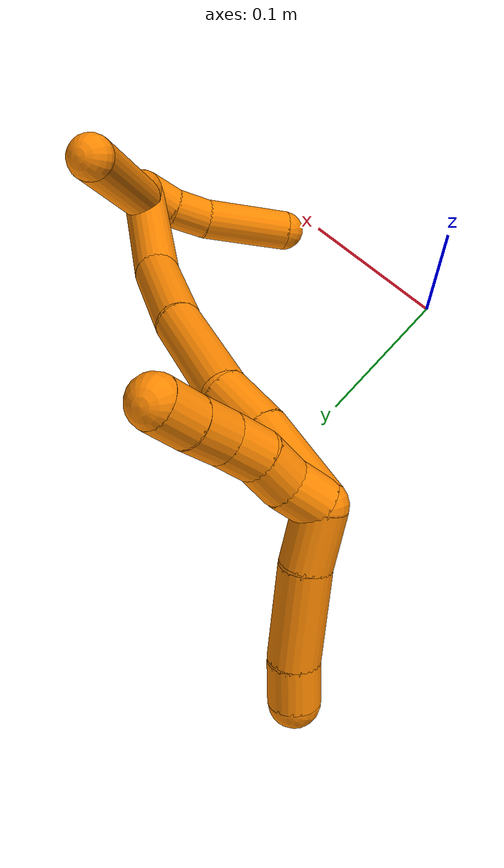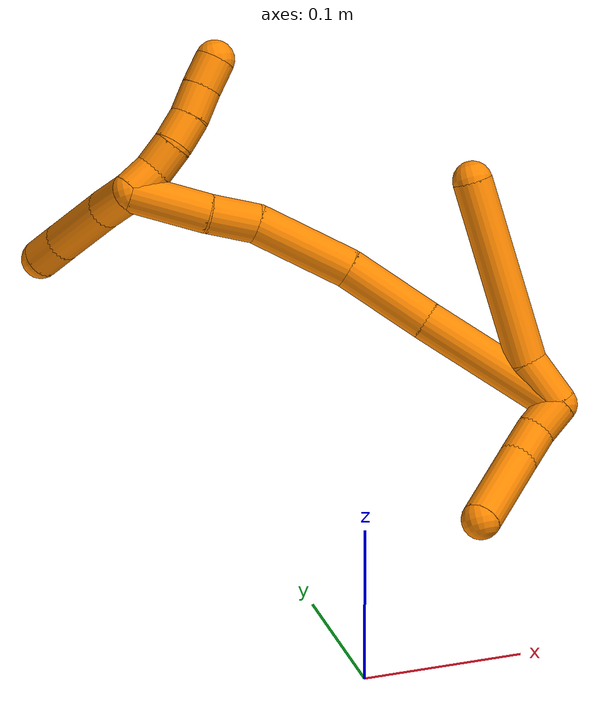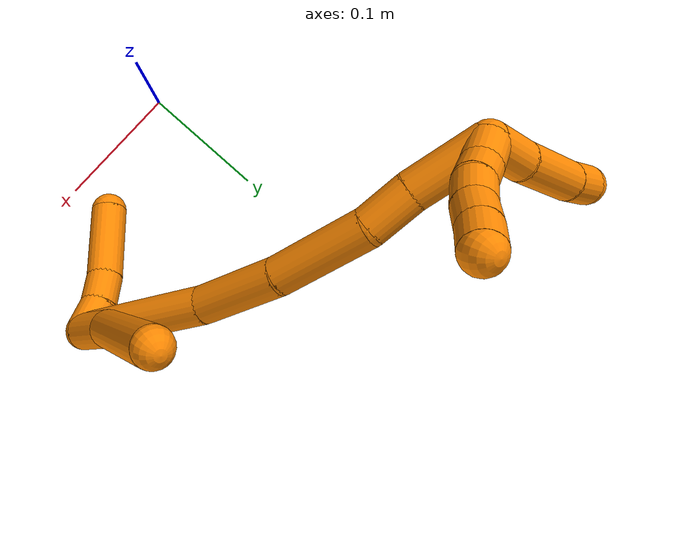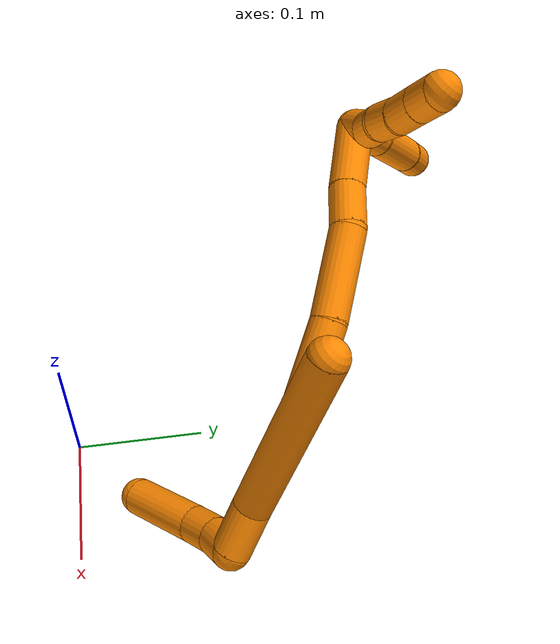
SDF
<sdf version="1.7">
 <world name="default">
  <model name="19">
   <static>0</static>
   <link name="19">
    <collision name="collision-cylinder-e_1_2_8">
     <pose>-0.006831 0.00134 0.014496 -0.092158 -0.438727 0.020561</pose>
     <geometry><cylinder><radius>0.0125</radius><length>0.032162</length></cylinder></geometry>
     <surface>
      <friction><ode><mu>1.16</mu><mu2>1.16</mu2><slip1>0</slip1><slip2>0</slip2></ode></friction>
      <contact><ode><kp>1e+06</kp><kd>1</kd><max_vel>0</max_vel><min_depth>0.001</min_depth></ode></contact>
     </surface>
    </collision>
    <visual name="visual-cylinder-e_1_2_8">
     <pose>-0.006831 0.00134 0.014496 -0.092158 -0.438727 0.020561</pose>
     <geometry><cylinder><radius>0.0125</radius><length>0.032162</length></cylinder></geometry>
     <material><ambient>0.996078 0.537255 0 1</ambient></material>
    </visual>
    <collision name="collision-cylinder-e_2_8_6">
     <pose>-0.027493 -0.00879 0.085105 0.201626 -0.23696 -0.024082</pose>
     <geometry><cylinder><radius>0.0125</radius><length>0.117838</length></cylinder></geometry>
     <surface>
      <friction><ode><mu>1.16</mu><mu2>1.16</mu2><slip1>0</slip1><slip2>0</slip2></ode></friction>
      <contact><ode><kp>1e+06</kp><kd>1</kd><max_vel>0</max_vel><min_depth>0.001</min_depth></ode></contact>
     </surface>
    </collision>
    <visual name="visual-cylinder-e_2_8_6">
     <pose>-0.027493 -0.00879 0.085105 0.201626 -0.23696 -0.024082</pose>
     <geometry><cylinder><radius>0.0125</radius><length>0.117838</length></cylinder></geometry>
     <material><ambient>0.996078 0.537255 0 1</ambient></material>
    </visual>
    <collision name="collision-cylinder-e_1_2_9">
     <pose>-0.007837 0.004089 -0.006749 -2.59682 -0.78198 1.95049</pose>
     <geometry><cylinder><radius>0.0125</radius><length>0.022243</length></cylinder></geometry>
     <surface>
      <friction><ode><mu>1.16</mu><mu2>1.16</mu2><slip1>0</slip1><slip2>0</slip2></ode></friction>
      <contact><ode><kp>1e+06</kp><kd>1</kd><max_vel>0</max_vel><min_depth>0.001</min_depth></ode></contact>
     </surface>
    </collision>
    <visual name="visual-cylinder-e_1_2_9">
     <pose>-0.007837 0.004089 -0.006749 -2.59682 -0.78198 1.95049</pose>
     <geometry><cylinder><radius>0.0125</radius><length>0.022243</length></cylinder></geometry>
     <material><ambient>0.996078 0.537255 0 1</ambient></material>
    </visual>
    <collision name="collision-cylinder-e_2_9_10">
     <pose>-0.024046 0.009984 -0.021439 -2.9181 -0.799125 2.62213</pose>
     <geometry><cylinder><radius>0.0125</radius><length>0.02336</length></cylinder></geometry>
     <surface>
      <friction><ode><mu>1.16</mu><mu2>1.16</mu2><slip1>0</slip1><slip2>0</slip2></ode></friction>
      <contact><ode><kp>1e+06</kp><kd>1</kd><max_vel>0</max_vel><min_depth>0.001</min_depth></ode></contact>
     </surface>
    </collision>
    <visual name="visual-cylinder-e_2_9_10">
     <pose>-0.024046 0.009984 -0.021439 -2.9181 -0.799125 2.62213</pose>
     <geometry><cylinder><radius>0.0125</radius><length>0.02336</length></cylinder></geometry>
     <material><ambient>0.996078 0.537255 0 1</ambient></material>
    </visual>
    <collision name="collision-cylinder-e_3_10_5">
     <pose>-0.053307 0.011309 -0.046793 3.11407 -0.875764 -3.08281</pose>
     <geometry><cylinder><radius>0.0125</radius><length>0.054398</length></cylinder></geometry>
     <surface>
      <friction><ode><mu>1.16</mu><mu2>1.16</mu2><slip1>0</slip1><slip2>0</slip2></ode></friction>
      <contact><ode><kp>1e+06</kp><kd>1</kd><max_vel>0</max_vel><min_depth>0.001</min_depth></ode></contact>
     </surface>
    </collision>
    <visual name="visual-cylinder-e_3_10_5">
     <pose>-0.053307 0.011309 -0.046793 3.11407 -0.875764 -3.08281</pose>
     <geometry><cylinder><radius>0.0125</radius><length>0.054398</length></cylinder></geometry>
     <material><ambient>0.996078 0.537255 0 1</ambient></material>
    </visual>
    <collision name="collision-cylinder-e_1_2_11">
     <pose>-0.027004 0.019532 0.034992 -0.509099 -0.592957 0.158635</pose>
     <geometry><cylinder><radius>0.0125</radius><length>0.096646</length></cylinder></geometry>
     <surface>
      <friction><ode><mu>1.16</mu><mu2>1.16</mu2><slip1>0</slip1><slip2>0</slip2></ode></friction>
      <contact><ode><kp>1e+06</kp><kd>1</kd><max_vel>0</max_vel><min_depth>0.001</min_depth></ode></contact>
     </surface>
    </collision>
    <visual name="visual-cylinder-e_1_2_11">
     <pose>-0.027004 0.019532 0.034992 -0.509099 -0.592957 0.158635</pose>
     <geometry><cylinder><radius>0.0125</radius><length>0.096646</length></cylinder></geometry>
     <material><ambient>0.996078 0.537255 0 1</ambient></material>
    </visual>
    <collision name="collision-cylinder-e_2_11_12">
     <pose>-0.072672 0.047269 0.090735 -0.376575 -0.69658 0.13815</pose>
     <geometry><cylinder><radius>0.0125</radius><length>0.058184</length></cylinder></geometry>
     <surface>
      <friction><ode><mu>1.16</mu><mu2>1.16</mu2><slip1>0</slip1><slip2>0</slip2></ode></friction>
      <contact><ode><kp>1e+06</kp><kd>1</kd><max_vel>0</max_vel><min_depth>0.001</min_depth></ode></contact>
     </surface>
    </collision>
    <visual name="visual-cylinder-e_2_11_12">
     <pose>-0.072672 0.047269 0.090735 -0.376575 -0.69658 0.13815</pose>
     <geometry><cylinder><radius>0.0125</radius><length>0.058184</length></cylinder></geometry>
     <material><ambient>0.996078 0.537255 0 1</ambient></material>
    </visual>
    <collision name="collision-cylinder-e_3_12_13">
     <pose>-0.11503 0.0651 0.130578 -0.466972 -0.83662 0.210665</pose>
     <geometry><cylinder><radius>0.0125</radius><length>0.063827</length></cylinder></geometry>
     <surface>
      <friction><ode><mu>1.16</mu><mu2>1.16</mu2><slip1>0</slip1><slip2>0</slip2></ode></friction>
      <contact><ode><kp>1e+06</kp><kd>1</kd><max_vel>0</max_vel><min_depth>0.001</min_depth></ode></contact>
     </surface>
    </collision>
    <visual name="visual-cylinder-e_3_12_13">
     <pose>-0.11503 0.0651 0.130578 -0.466972 -0.83662 0.210665</pose>
     <geometry><cylinder><radius>0.0125</radius><length>0.063827</length></cylinder></geometry>
     <material><ambient>0.996078 0.537255 0 1</ambient></material>
    </visual>
    <collision name="collision-cylinder-e_4_13_14">
     <pose>-0.15236 0.079754 0.15525 -0.733371 -1.06736 0.446296</pose>
     <geometry><cylinder><radius>0.0125</radius><length>0.031141</length></cylinder></geometry>
     <surface>
      <friction><ode><mu>1.16</mu><mu2>1.16</mu2><slip1>0</slip1><slip2>0</slip2></ode></friction>
      <contact><ode><kp>1e+06</kp><kd>1</kd><max_vel>0</max_vel><min_depth>0.001</min_depth></ode></contact>
     </surface>
    </collision>
    <visual name="visual-cylinder-e_4_13_14">
     <pose>-0.15236 0.079754 0.15525 -0.733371 -1.06736 0.446296</pose>
     <geometry><cylinder><radius>0.0125</radius><length>0.031141</length></cylinder></geometry>
     <material><ambient>0.996078 0.537255 0 1</ambient></material>
    </visual>
    <collision name="collision-cylinder-e_5_14_1">
     <pose>-0.186347 0.094291 0.172038 -0.703608 -0.945277 0.371046</pose>
     <geometry><cylinder><radius>0.0125</radius><length>0.050203</length></cylinder></geometry>
     <surface>
      <friction><ode><mu>1.16</mu><mu2>1.16</mu2><slip1>0</slip1><slip2>0</slip2></ode></friction>
      <contact><ode><kp>1e+06</kp><kd>1</kd><max_vel>0</max_vel><min_depth>0.001</min_depth></ode></contact>
     </surface>
    </collision>
    <visual name="visual-cylinder-e_5_14_1">
     <pose>-0.186347 0.094291 0.172038 -0.703608 -0.945277 0.371046</pose>
     <geometry><cylinder><radius>0.0125</radius><length>0.050203</length></cylinder></geometry>
     <material><ambient>0.996078 0.537255 0 1</ambient></material>
    </visual>
    <collision name="collision-cylinder-e_1_1_15">
     <pose>-0.199196 0.099638 0.188386 0.680545 0.848111 0.316982</pose>
     <geometry><cylinder><radius>0.0125</radius><length>0.02</length></cylinder></geometry>
     <surface>
      <friction><ode><mu>1.16</mu><mu2>1.16</mu2><slip1>0</slip1><slip2>0</slip2></ode></friction>
      <contact><ode><kp>1e+06</kp><kd>1</kd><max_vel>0</max_vel><min_depth>0.001</min_depth></ode></contact>
     </surface>
    </collision>
    <visual name="visual-cylinder-e_1_1_15">
     <pose>-0.199196 0.099638 0.188386 0.680545 0.848111 0.316982</pose>
     <geometry><cylinder><radius>0.0125</radius><length>0.02</length></cylinder></geometry>
     <material><ambient>0.996078 0.537255 0 1</ambient></material>
    </visual>
    <collision name="collision-cylinder-e_2_15_16">
     <pose>-0.186534 0.089585 0.199743 0.758483 0.542323 0.220692</pose>
     <geometry><cylinder><radius>0.0125</radius><length>0.02</length></cylinder></geometry>
     <surface>
      <friction><ode><mu>1.16</mu><mu2>1.16</mu2><slip1>0</slip1><slip2>0</slip2></ode></friction>
      <contact><ode><kp>1e+06</kp><kd>1</kd><max_vel>0</max_vel><min_depth>0.001</min_depth></ode></contact>
     </surface>
    </collision>
    <visual name="visual-cylinder-e_2_15_16">
     <pose>-0.186534 0.089585 0.199743 0.758483 0.542323 0.220692</pose>
     <geometry><cylinder><radius>0.0125</radius><length>0.02</length></cylinder></geometry>
     <material><ambient>0.996078 0.537255 0 1</ambient></material>
    </visual>
    <collision name="collision-cylinder-e_3_16_17">
     <pose>-0.175605 0.079906 0.213198 0.482195 0.614858 0.155816</pose>
     <geometry><cylinder><radius>0.0125</radius><length>0.02</length></cylinder></geometry>
     <surface>
      <friction><ode><mu>1.16</mu><mu2>1.16</mu2><slip1>0</slip1><slip2>0</slip2></ode></friction>
      <contact><ode><kp>1e+06</kp><kd>1</kd><max_vel>0</max_vel><min_depth>0.001</min_depth></ode></contact>
     </surface>
    </collision>
    <visual name="visual-cylinder-e_3_16_17">
     <pose>-0.175605 0.079906 0.213198 0.482195 0.614858 0.155816</pose>
     <geometry><cylinder><radius>0.0125</radius><length>0.02</length></cylinder></geometry>
     <material><ambient>0.996078 0.537255 0 1</ambient></material>
    </visual>
    <collision name="collision-cylinder-e_4_17_18">
     <pose>-0.165277 0.072606 0.228613 0.405693 0.473462 0.099159</pose>
     <geometry><cylinder><radius>0.0125</radius><length>0.02</length></cylinder></geometry>
     <surface>
      <friction><ode><mu>1.16</mu><mu2>1.16</mu2><slip1>0</slip1><slip2>0</slip2></ode></friction>
      <contact><ode><kp>1e+06</kp><kd>1</kd><max_vel>0</max_vel><min_depth>0.001</min_depth></ode></contact>
     </surface>
    </collision>
    <visual name="visual-cylinder-e_4_17_18">
     <pose>-0.165277 0.072606 0.228613 0.405693 0.473462 0.099159</pose>
     <geometry><cylinder><radius>0.0125</radius><length>0.02</length></cylinder></geometry>
     <material><ambient>0.996078 0.537255 0 1</ambient></material>
    </visual>
    <collision name="collision-cylinder-e_5_18_4">
     <pose>-0.155934 0.065096 0.24461 0.47254 0.498697 0.122468</pose>
     <geometry><cylinder><radius>0.0125</radius><length>0.02</length></cylinder></geometry>
     <surface>
      <friction><ode><mu>1.16</mu><mu2>1.16</mu2><slip1>0</slip1><slip2>0</slip2></ode></friction>
      <contact><ode><kp>1e+06</kp><kd>1</kd><max_vel>0</max_vel><min_depth>0.001</min_depth></ode></contact>
     </surface>
    </collision>
    <visual name="visual-cylinder-e_5_18_4">
     <pose>-0.155934 0.065096 0.24461 0.47254 0.498697 0.122468</pose>
     <geometry><cylinder><radius>0.0125</radius><length>0.02</length></cylinder></geometry>
     <material><ambient>0.996078 0.537255 0 1</ambient></material>
    </visual>
    <collision name="collision-cylinder-e_1_1_19">
     <pose>-0.205884 0.118442 0.182552 -1.61806 0.055375 -0.058054</pose>
     <geometry><cylinder><radius>0.0125</radius><length>0.029361</length></cylinder></geometry>
     <surface>
      <friction><ode><mu>1.16</mu><mu2>1.16</mu2><slip1>0</slip1><slip2>0</slip2></ode></friction>
      <contact><ode><kp>1e+06</kp><kd>1</kd><max_vel>0</max_vel><min_depth>0.001</min_depth></ode></contact>
     </surface>
    </collision>
    <visual name="visual-cylinder-e_1_1_19">
     <pose>-0.205884 0.118442 0.182552 -1.61806 0.055375 -0.058054</pose>
     <geometry><cylinder><radius>0.0125</radius><length>0.029361</length></cylinder></geometry>
     <material><ambient>0.996078 0.537255 0 1</ambient></material>
    </visual>
    <collision name="collision-cylinder-e_2_19_20">
     <pose>-0.206097 0.157024 0.178666 -1.70342 -0.042432 0.048466</pose>
     <geometry><cylinder><radius>0.0125</radius><length>0.04835</length></cylinder></geometry>
     <surface>
      <friction><ode><mu>1.16</mu><mu2>1.16</mu2><slip1>0</slip1><slip2>0</slip2></ode></friction>
      <contact><ode><kp>1e+06</kp><kd>1</kd><max_vel>0</max_vel><min_depth>0.001</min_depth></ode></contact>
     </surface>
    </collision>
    <visual name="visual-cylinder-e_2_19_20">
     <pose>-0.206097 0.157024 0.178666 -1.70342 -0.042432 0.048466</pose>
     <geometry><cylinder><radius>0.0125</radius><length>0.04835</length></cylinder></geometry>
     <material><ambient>0.996078 0.537255 0 1</ambient></material>
    </visual>
    <collision name="collision-cylinder-e_3_20_3">
     <pose>-0.208748 0.191791 0.173383 -1.76141 -0.146373 0.17717</pose>
     <geometry><cylinder><radius>0.0125</radius><length>0.022289</length></cylinder></geometry>
     <surface>
      <friction><ode><mu>1.16</mu><mu2>1.16</mu2><slip1>0</slip1><slip2>0</slip2></ode></friction>
      <contact><ode><kp>1e+06</kp><kd>1</kd><max_vel>0</max_vel><min_depth>0.001</min_depth></ode></contact>
     </surface>
    </collision>
    <visual name="visual-cylinder-e_3_20_3">
     <pose>-0.208748 0.191791 0.173383 -1.76141 -0.146373 0.17717</pose>
     <geometry><cylinder><radius>0.0125</radius><length>0.022289</length></cylinder></geometry>
     <material><ambient>0.996078 0.537255 0 1</ambient></material>
    </visual>
    <collision name="collision-sphere-3">
     <pose>-0.210373 0.202617 0.171294 0 -0 0</pose>
     <geometry><sphere><radius>0.0125</radius></sphere></geometry>
     <surface>
      <friction><ode><mu>1.16</mu><mu2>1.16</mu2><slip1>0</slip1><slip2>0</slip2></ode></friction>
      <contact><ode><kp>1e+06</kp><kd>1</kd><max_vel>0</max_vel><min_depth>0.001</min_depth></ode></contact>
     </surface>
    </collision>
    <visual name="visual-sphere-3">
     <pose>-0.210373 0.202617 0.171294 0 -0 0</pose>
     <geometry><sphere><radius>0.0125</radius></sphere></geometry>
     <material><ambient>0.996078 0.537255 0 1</ambient></material>
    </visual>
    <collision name="collision-sphere-20">
     <pose>-0.207122 0.180965 0.175472 0 -0 0</pose>
     <geometry><sphere><radius>0.0125</radius></sphere></geometry>
     <surface>
      <friction><ode><mu>1.16</mu><mu2>1.16</mu2><slip1>0</slip1><slip2>0</slip2></ode></friction>
      <contact><ode><kp>1e+06</kp><kd>1</kd><max_vel>0</max_vel><min_depth>0.001</min_depth></ode></contact>
     </surface>
    </collision>
    <visual name="visual-sphere-20">
     <pose>-0.207122 0.180965 0.175472 0 -0 0</pose>
     <geometry><sphere><radius>0.0125</radius></sphere></geometry>
     <material><ambient>0.996078 0.537255 0 1</ambient></material>
    </visual>
    <collision name="collision-sphere-19">
     <pose>-0.205071 0.133083 0.18186 0 -0 0</pose>
     <geometry><sphere><radius>0.0125</radius></sphere></geometry>
     <surface>
      <friction><ode><mu>1.16</mu><mu2>1.16</mu2><slip1>0</slip1><slip2>0</slip2></ode></friction>
      <contact><ode><kp>1e+06</kp><kd>1</kd><max_vel>0</max_vel><min_depth>0.001</min_depth></ode></contact>
     </surface>
    </collision>
    <visual name="visual-sphere-19">
     <pose>-0.205071 0.133083 0.18186 0 -0 0</pose>
     <geometry><sphere><radius>0.0125</radius></sphere></geometry>
     <material><ambient>0.996078 0.537255 0 1</ambient></material>
    </visual>
    <collision name="collision-sphere-5">
     <pose>-0.074196 0.01083 -0.064205 0 -0 0</pose>
     <geometry><sphere><radius>0.0125</radius></sphere></geometry>
     <surface>
      <friction><ode><mu>1.16</mu><mu2>1.16</mu2><slip1>0</slip1><slip2>0</slip2></ode></friction>
      <contact><ode><kp>1e+06</kp><kd>1</kd><max_vel>0</max_vel><min_depth>0.001</min_depth></ode></contact>
     </surface>
    </collision>
    <visual name="visual-sphere-5">
     <pose>-0.074196 0.01083 -0.064205 0 -0 0</pose>
     <geometry><sphere><radius>0.0125</radius></sphere></geometry>
     <material><ambient>0.996078 0.537255 0 1</ambient></material>
    </visual>
    <collision name="collision-sphere-10">
     <pose>-0.032417 0.011789 -0.029382 0 -0 0</pose>
     <geometry><sphere><radius>0.0125</radius></sphere></geometry>
     <surface>
      <friction><ode><mu>1.16</mu><mu2>1.16</mu2><slip1>0</slip1><slip2>0</slip2></ode></friction>
      <contact><ode><kp>1e+06</kp><kd>1</kd><max_vel>0</max_vel><min_depth>0.001</min_depth></ode></contact>
     </surface>
    </collision>
    <visual name="visual-sphere-10">
     <pose>-0.032417 0.011789 -0.029382 0 -0 0</pose>
     <geometry><sphere><radius>0.0125</radius></sphere></geometry>
     <material><ambient>0.996078 0.537255 0 1</ambient></material>
    </visual>
    <collision name="collision-sphere-6">
     <pose>-0.041324 -0.02026 0.141217 0 -0 0</pose>
     <geometry><sphere><radius>0.0125</radius></sphere></geometry>
     <surface>
      <friction><ode><mu>1.16</mu><mu2>1.16</mu2><slip1>0</slip1><slip2>0</slip2></ode></friction>
      <contact><ode><kp>1e+06</kp><kd>1</kd><max_vel>0</max_vel><min_depth>0.001</min_depth></ode></contact>
     </surface>
    </collision>
    <visual name="visual-sphere-6">
     <pose>-0.041324 -0.02026 0.141217 0 -0 0</pose>
     <geometry><sphere><radius>0.0125</radius></sphere></geometry>
     <material><ambient>0.996078 0.537255 0 1</ambient></material>
    </visual>
    <collision name="collision-sphere-9">
     <pose>-0.015674 0.008178 -0.013497 0 -0 0</pose>
     <geometry><sphere><radius>0.0125</radius></sphere></geometry>
     <surface>
      <friction><ode><mu>1.16</mu><mu2>1.16</mu2><slip1>0</slip1><slip2>0</slip2></ode></friction>
      <contact><ode><kp>1e+06</kp><kd>1</kd><max_vel>0</max_vel><min_depth>0.001</min_depth></ode></contact>
     </surface>
    </collision>
    <visual name="visual-sphere-9">
     <pose>-0.015674 0.008178 -0.013497 0 -0 0</pose>
     <geometry><sphere><radius>0.0125</radius></sphere></geometry>
     <material><ambient>0.996078 0.537255 0 1</ambient></material>
    </visual>
    <collision name="collision-sphere-2">
     <geometry><sphere><radius>0.0125</radius></sphere></geometry>
     <surface>
      <friction><ode><mu>1.16</mu><mu2>1.16</mu2><slip1>0</slip1><slip2>0</slip2></ode></friction>
      <contact><ode><kp>1e+06</kp><kd>1</kd><max_vel>0</max_vel><min_depth>0.001</min_depth></ode></contact>
     </surface>
    </collision>
    <visual name="visual-sphere-2">
     <geometry><sphere><radius>0.0125</radius></sphere></geometry>
     <material><ambient>0.996078 0.537255 0 1</ambient></material>
    </visual>
    <collision name="collision-sphere-8">
     <pose>-0.013662 0.00268 0.028993 0 -0 0</pose>
     <geometry><sphere><radius>0.0125</radius></sphere></geometry>
     <surface>
      <friction><ode><mu>1.16</mu><mu2>1.16</mu2><slip1>0</slip1><slip2>0</slip2></ode></friction>
      <contact><ode><kp>1e+06</kp><kd>1</kd><max_vel>0</max_vel><min_depth>0.001</min_depth></ode></contact>
     </surface>
    </collision>
    <visual name="visual-sphere-8">
     <pose>-0.013662 0.00268 0.028993 0 -0 0</pose>
     <geometry><sphere><radius>0.0125</radius></sphere></geometry>
     <material><ambient>0.996078 0.537255 0 1</ambient></material>
    </visual>
    <collision name="collision-sphere-11">
     <pose>-0.054007 0.039063 0.069983 0 -0 0</pose>
     <geometry><sphere><radius>0.0125</radius></sphere></geometry>
     <surface>
      <friction><ode><mu>1.16</mu><mu2>1.16</mu2><slip1>0</slip1><slip2>0</slip2></ode></friction>
      <contact><ode><kp>1e+06</kp><kd>1</kd><max_vel>0</max_vel><min_depth>0.001</min_depth></ode></contact>
     </surface>
    </collision>
    <visual name="visual-sphere-11">
     <pose>-0.054007 0.039063 0.069983 0 -0 0</pose>
     <geometry><sphere><radius>0.0125</radius></sphere></geometry>
     <material><ambient>0.996078 0.537255 0 1</ambient></material>
    </visual>
    <collision name="collision-sphere-12">
     <pose>-0.091338 0.055475 0.111486 0 -0 0</pose>
     <geometry><sphere><radius>0.0125</radius></sphere></geometry>
     <surface>
      <friction><ode><mu>1.16</mu><mu2>1.16</mu2><slip1>0</slip1><slip2>0</slip2></ode></friction>
      <contact><ode><kp>1e+06</kp><kd>1</kd><max_vel>0</max_vel><min_depth>0.001</min_depth></ode></contact>
     </surface>
    </collision>
    <visual name="visual-sphere-12">
     <pose>-0.091338 0.055475 0.111486 0 -0 0</pose>
     <geometry><sphere><radius>0.0125</radius></sphere></geometry>
     <material><ambient>0.996078 0.537255 0 1</ambient></material>
    </visual>
    <collision name="collision-sphere-13">
     <pose>-0.138722 0.074726 0.14967 0 -0 0</pose>
     <geometry><sphere><radius>0.0125</radius></sphere></geometry>
     <surface>
      <friction><ode><mu>1.16</mu><mu2>1.16</mu2><slip1>0</slip1><slip2>0</slip2></ode></friction>
      <contact><ode><kp>1e+06</kp><kd>1</kd><max_vel>0</max_vel><min_depth>0.001</min_depth></ode></contact>
     </surface>
    </collision>
    <visual name="visual-sphere-13">
     <pose>-0.138722 0.074726 0.14967 0 -0 0</pose>
     <geometry><sphere><radius>0.0125</radius></sphere></geometry>
     <material><ambient>0.996078 0.537255 0 1</ambient></material>
    </visual>
    <collision name="collision-sphere-14">
     <pose>-0.165999 0.084782 0.160831 0 -0 0</pose>
     <geometry><sphere><radius>0.0125</radius></sphere></geometry>
     <surface>
      <friction><ode><mu>1.16</mu><mu2>1.16</mu2><slip1>0</slip1><slip2>0</slip2></ode></friction>
      <contact><ode><kp>1e+06</kp><kd>1</kd><max_vel>0</max_vel><min_depth>0.001</min_depth></ode></contact>
     </surface>
    </collision>
    <visual name="visual-sphere-14">
     <pose>-0.165999 0.084782 0.160831 0 -0 0</pose>
     <geometry><sphere><radius>0.0125</radius></sphere></geometry>
     <material><ambient>0.996078 0.537255 0 1</ambient></material>
    </visual>
    <collision name="collision-sphere-1">
     <pose>-0.206696 0.1038 0.183245 0 -0 0</pose>
     <geometry><sphere><radius>0.0125</radius></sphere></geometry>
     <surface>
      <friction><ode><mu>1.16</mu><mu2>1.16</mu2><slip1>0</slip1><slip2>0</slip2></ode></friction>
      <contact><ode><kp>1e+06</kp><kd>1</kd><max_vel>0</max_vel><min_depth>0.001</min_depth></ode></contact>
     </surface>
    </collision>
    <visual name="visual-sphere-1">
     <pose>-0.206696 0.1038 0.183245 0 -0 0</pose>
     <geometry><sphere><radius>0.0125</radius></sphere></geometry>
     <material><ambient>0.996078 0.537255 0 1</ambient></material>
    </visual>
    <collision name="collision-sphere-18">
     <pose>-0.160717 0.069093 0.23679 0 -0 0</pose>
     <geometry><sphere><radius>0.0125</radius></sphere></geometry>
     <surface>
      <friction><ode><mu>1.16</mu><mu2>1.16</mu2><slip1>0</slip1><slip2>0</slip2></ode></friction>
      <contact><ode><kp>1e+06</kp><kd>1</kd><max_vel>0</max_vel><min_depth>0.001</min_depth></ode></contact>
     </surface>
    </collision>
    <visual name="visual-sphere-18">
     <pose>-0.160717 0.069093 0.23679 0 -0 0</pose>
     <geometry><sphere><radius>0.0125</radius></sphere></geometry>
     <material><ambient>0.996078 0.537255 0 1</ambient></material>
    </visual>
    <collision name="collision-sphere-15">
     <pose>-0.191696 0.095477 0.193526 0 -0 0</pose>
     <geometry><sphere><radius>0.0125</radius></sphere></geometry>
     <surface>
      <friction><ode><mu>1.16</mu><mu2>1.16</mu2><slip1>0</slip1><slip2>0</slip2></ode></friction>
      <contact><ode><kp>1e+06</kp><kd>1</kd><max_vel>0</max_vel><min_depth>0.001</min_depth></ode></contact>
     </surface>
    </collision>
    <visual name="visual-sphere-15">
     <pose>-0.191696 0.095477 0.193526 0 -0 0</pose>
     <geometry><sphere><radius>0.0125</radius></sphere></geometry>
     <material><ambient>0.996078 0.537255 0 1</ambient></material>
    </visual>
    <collision name="collision-sphere-16">
     <pose>-0.181373 0.083694 0.205961 0 -0 0</pose>
     <geometry><sphere><radius>0.0125</radius></sphere></geometry>
     <surface>
      <friction><ode><mu>1.16</mu><mu2>1.16</mu2><slip1>0</slip1><slip2>0</slip2></ode></friction>
      <contact><ode><kp>1e+06</kp><kd>1</kd><max_vel>0</max_vel><min_depth>0.001</min_depth></ode></contact>
     </surface>
    </collision>
    <visual name="visual-sphere-16">
     <pose>-0.181373 0.083694 0.205961 0 -0 0</pose>
     <geometry><sphere><radius>0.0125</radius></sphere></geometry>
     <material><ambient>0.996078 0.537255 0 1</ambient></material>
    </visual>
    <collision name="collision-sphere-17">
     <pose>-0.169836 0.076118 0.220435 0 -0 0</pose>
     <geometry><sphere><radius>0.0125</radius></sphere></geometry>
     <surface>
      <friction><ode><mu>1.16</mu><mu2>1.16</mu2><slip1>0</slip1><slip2>0</slip2></ode></friction>
      <contact><ode><kp>1e+06</kp><kd>1</kd><max_vel>0</max_vel><min_depth>0.001</min_depth></ode></contact>
     </surface>
    </collision>
    <visual name="visual-sphere-17">
     <pose>-0.169836 0.076118 0.220435 0 -0 0</pose>
     <geometry><sphere><radius>0.0125</radius></sphere></geometry>
     <material><ambient>0.996078 0.537255 0 1</ambient></material>
    </visual>
    <collision name="collision-sphere-4">
     <pose>-0.151151 0.061099 0.252429 0 -0 0</pose>
     <geometry><sphere><radius>0.0125</radius></sphere></geometry>
     <surface>
      <friction><ode><mu>1.16</mu><mu2>1.16</mu2><slip1>0</slip1><slip2>0</slip2></ode></friction>
      <contact><ode><kp>1e+06</kp><kd>1</kd><max_vel>0</max_vel><min_depth>0.001</min_depth></ode></contact>
     </surface>
    </collision>
    <visual name="visual-sphere-4">
     <pose>-0.151151 0.061099 0.252429 0 -0 0</pose>
     <geometry><sphere><radius>0.0125</radius></sphere></geometry>
     <material><ambient>0.996078 0.537255 0 1</ambient></material>
    </visual>
    <inertial>
     <pose>-0.098251 0.052584 0.102826 0 -0 0</pose>
     <mass>0.75</mass>
     <inertia>
      <ixx>0.000252</ixx>
      <ixy>0</ixy>
      <ixz>0</ixz>
      <iyy>0.000323</iyy>
      <iyz>0</iyz>
      <izz>0.000121</izz>
     </inertia>
    </inertial>
   </link>
   <pose>0.161607 0.106899 0.110073 -0.635341 0.20442 0.342961</pose>
  </model>
 </world>
</sdf>
